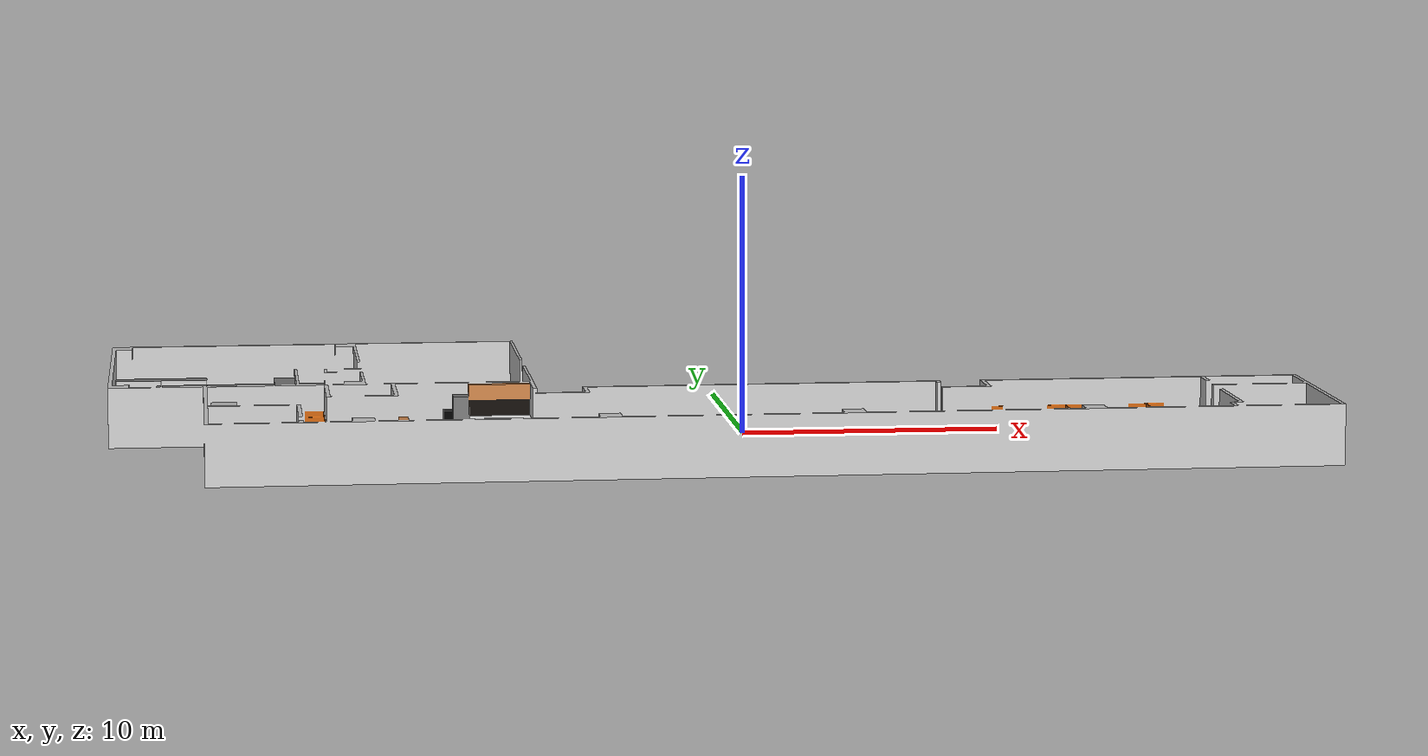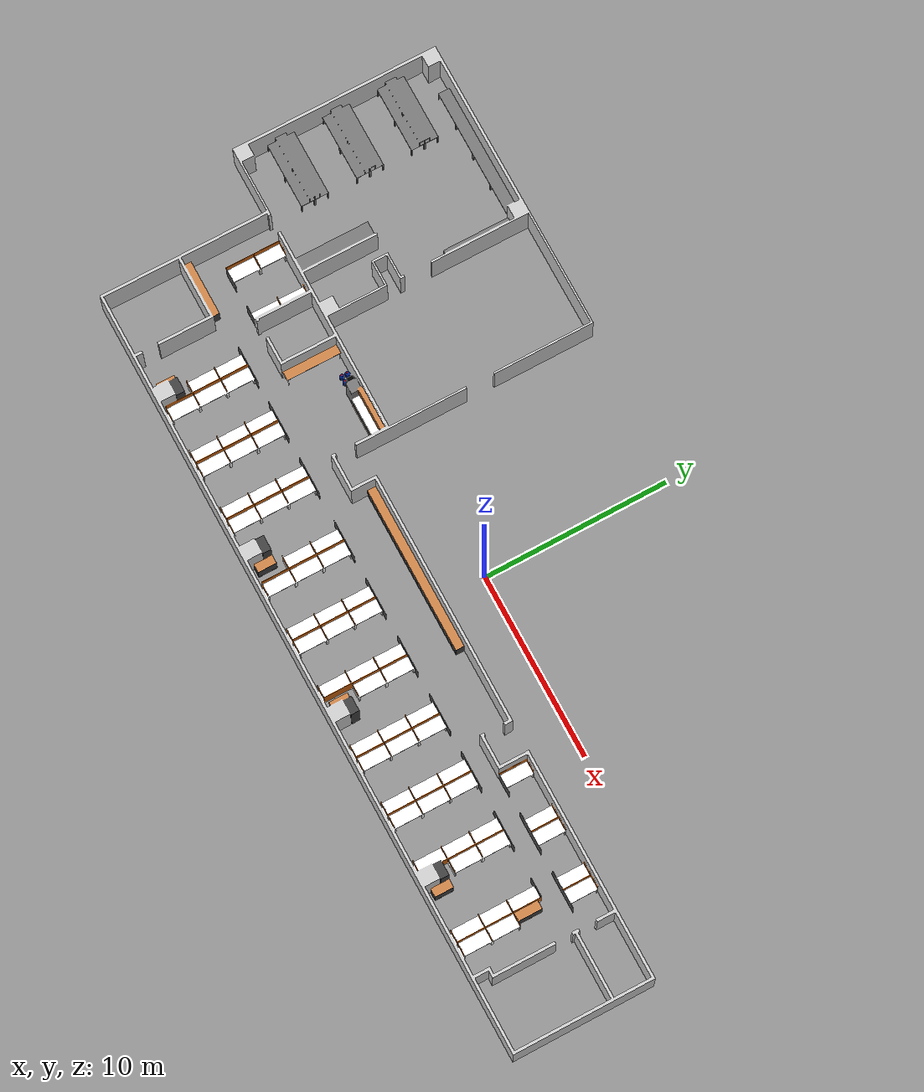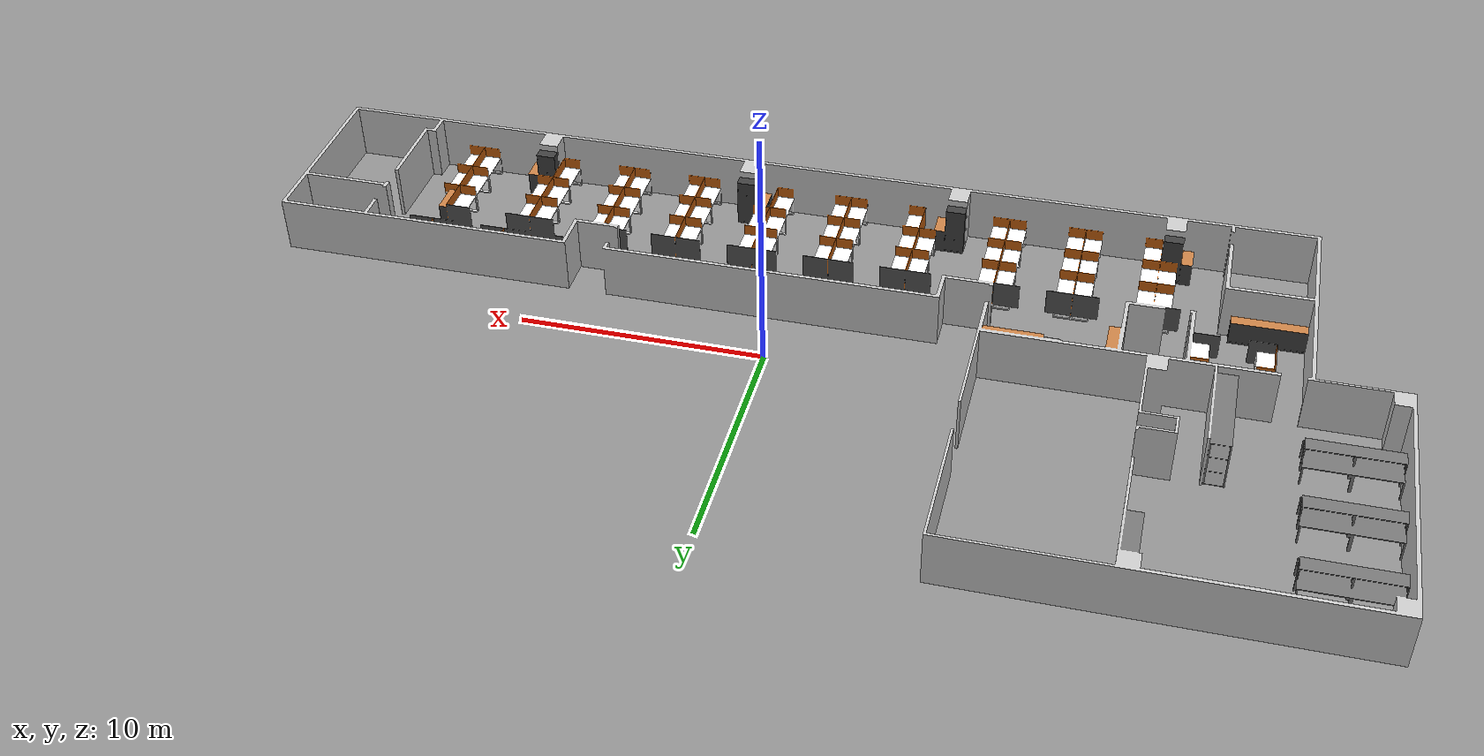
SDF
<?xml version="1.0"?>
<sdf version="1.8">
  <model name="office">
    <static>true</static>
    <link name='link'>
      <pose>0 0 0 0 0 0</pose>
      <collision name='collision'>
        <geometry>
          <mesh>
            <uri>model://office/meshes/office.dae</uri>
          </mesh>
        </geometry>
      </collision>
      <visual name='visual'>
        <geometry>
          <mesh>
            <uri>model://office/meshes/office.dae</uri>
          </mesh>
        </geometry>
      </visual>
    </link>
  </model>
</sdf>
